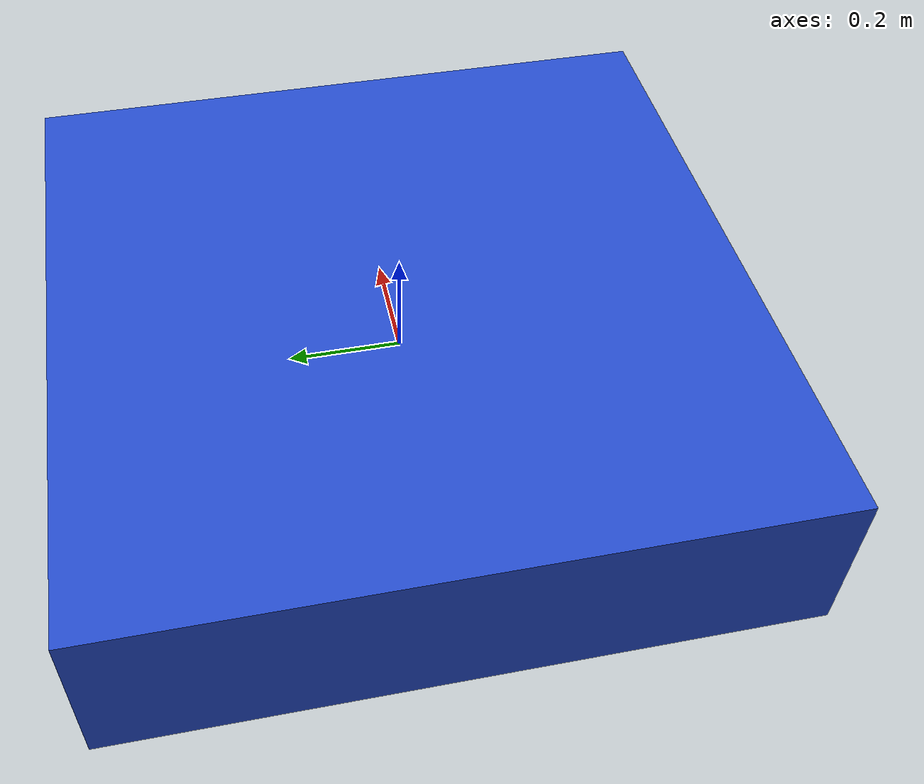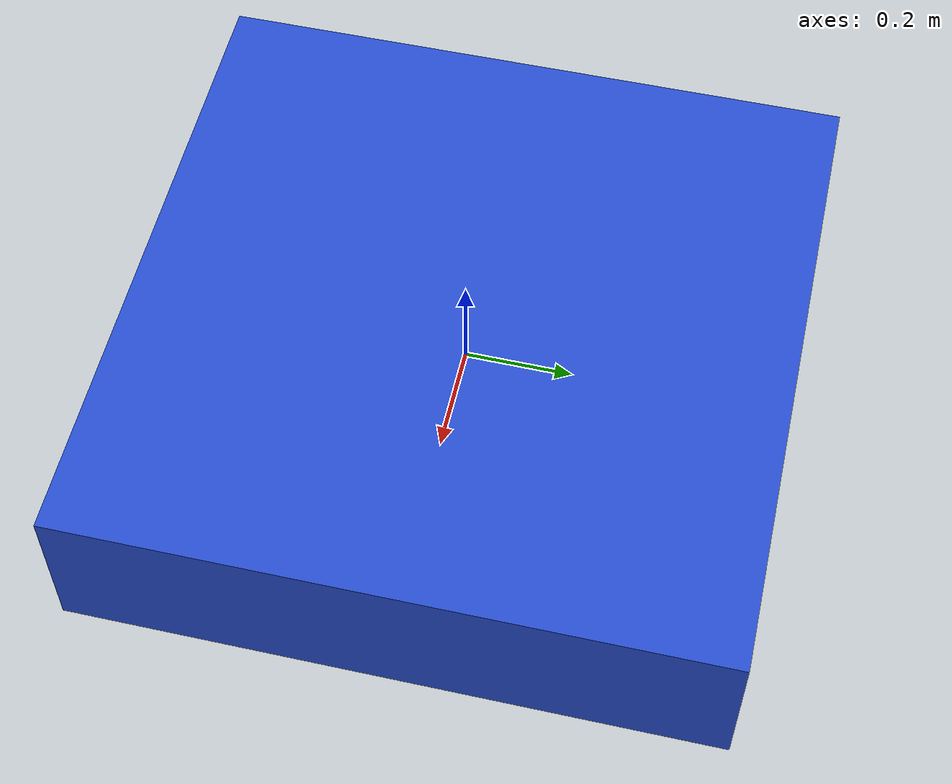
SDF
<?xml version="1.0" ?>
<sdf version="1.4">
  <model name="landing_platform">
    <static>0</static>
    <link name="sensors_link">
        <collision name="box_collision">
          <geometry>
            <box>
              <size>1.2 1.2 0.28</size>
            </box>
          </geometry>
      <surface>
        <friction>
          <ode>
            <mu>0.99</mu>
            <mu2>0.99</mu2>
          </ode>
        </friction>
      </surface>
        </collision>

        <collision name="landing_collision">
          <geometry>
            <box>
              <size>0.8 0.8 0.3</size>
            </box>
          </geometry>
      <surface>
        <friction>
          <ode>
            <mu>0.99</mu>
            <mu2>0.99</mu2>
          </ode>
        </friction>
      </surface>
        </collision>

        <visual name="visual">
          <geometry>
            <box>
              <size>1.2 1.2 0.3</size>
            </box>
          </geometry>
        <material>
          <script>
            <name>Gazebo/blue</name>
            <uri>file://media/materials/scripts/gazebo.material</uri>
          </script>
          <ambient>0.3 0.3 0.3 1</ambient>
          <diffuse>0.2 0.7 0.7 1</diffuse>
          <specular>0.01 0.01 0.01 1</specular>
          <emissive>0.2 0.7 0 1</emissive>
          <shader type='vertex'>
            <normal_map>__default__</normal_map>
          </shader>
        </material>
        <pose frame=''>0 0 0 0 -0 0</pose>
        <cast_shadows>1</cast_shadows>
        <transparency>0.0</transparency>
        </visual>
      <sensor name="contact_sensor_1" type="contact">
	<plugin name="my_contact_plugin" filename="libgazebo_ros_bumper.so"/>
          <contact>
            <collision>landing_collision</collision>
          </contact>
      </sensor>
    </link>
      <plugin name="model_push" filename="libgazebo_moving_platform.so">
        <robotNamespace>/</robotNamespace>
      </plugin>
  </model>
</sdf>
